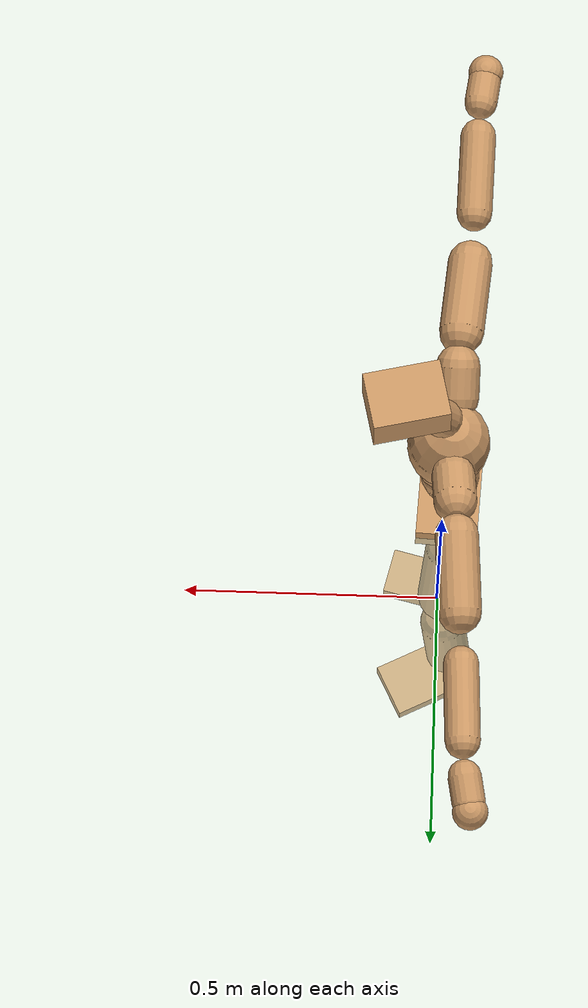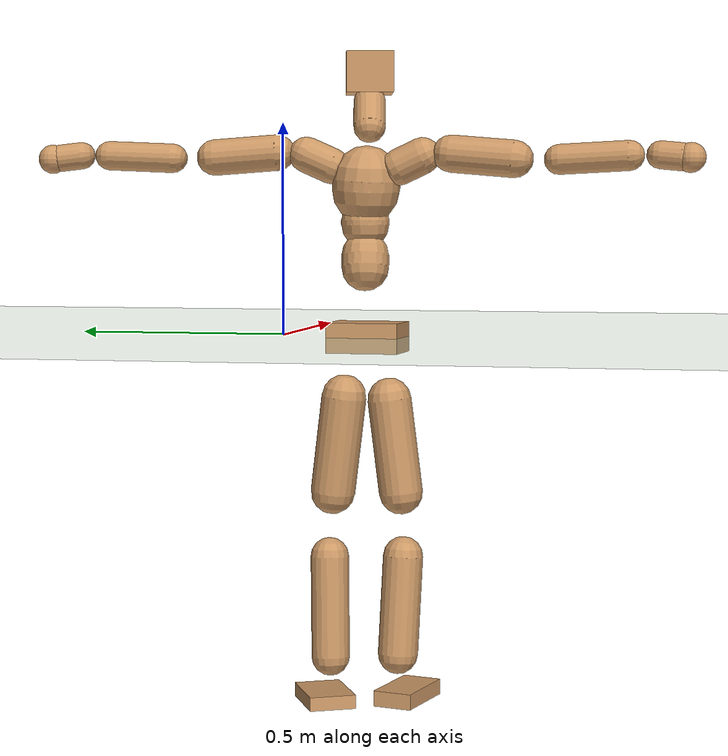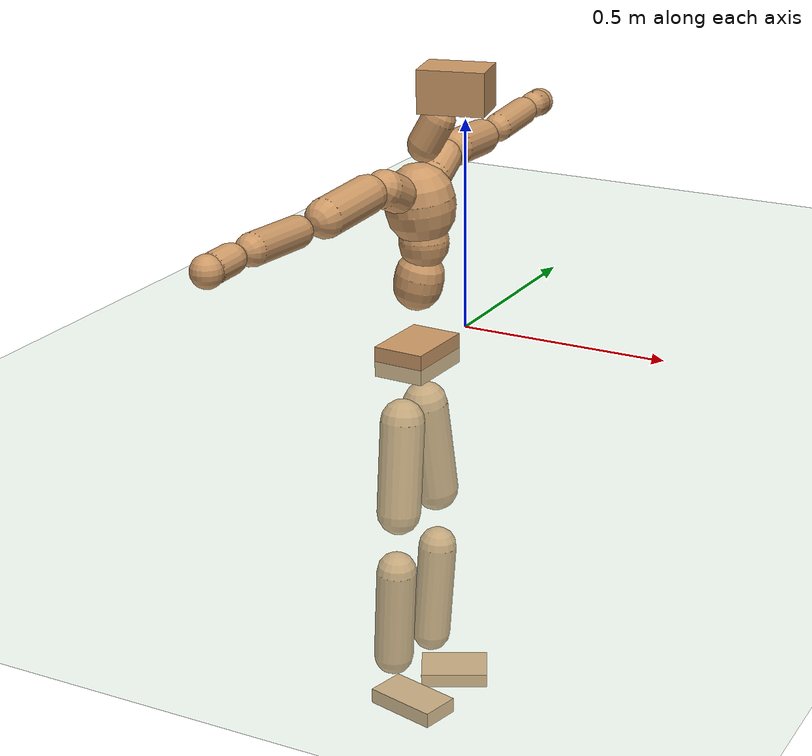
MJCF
<mujoco model="humanoid">
  <compiler coordinate="local" angle="radian"/>
  <default>
    <joint damping="0.0" armature="0.01" stiffness="0.0" limited="true"/>
    <geom conaffinity="1" condim="3" contype="7" margin="0.001" rgba="0.8 0.6 .4 1"/>
  </default>
  <asset>
    <texture type="skybox" builtin="gradient" rgb1=".4 .5 .6" rgb2="0 0 0" width="100" height="100"/>
    <texture builtin="flat" height="1278" mark="cross" markrgb="1 1 1" name="texgeom" random="0.01" rgb1="0.8 0.6 0.4" rgb2="0.8 0.6 0.4" type="cube" width="127"/>
    <texture builtin="checker" height="100" name="texplane" rgb1="0 0 0" rgb2="0.8 0.8 0.8" type="2d" width="100"/>
    <material name="MatPlane" reflectance="0.5" shininess="1" specular="1" texrepeat="60 60" texture="texplane"/>
    <material name="geom" texture="texgeom" texuniform="true"/>
  </asset>
  <worldbody>
    <light cutoff="100" diffuse="1 1 1" dir="-0 0 -1.3" directional="true" exponent="1" pos="0 0 1.3" specular=".1 .1 .1"/>
    <geom conaffinity="1" condim="3" name="floor" pos="0 0 0" rgba="0.8 0.9 0.8 1" size="100 100 .2" type="plane" material="MatPlane"/>
    <body name="Pelvis" pos="-0.006 -0.2084 0.0054">
      <freejoint name="Pelvis"/>
      <geom type="box" contype="1" conaffinity="1" density="500" pos="-0.0121 0.0006 -0.0082" size="0.0608 0.0857 0.0354" quat="0.9997 0.0000 0.0000 -0.0248" name="Pelvis"/>
      <body name="L_Hip" pos="-0.0261 0.0449 -0.0728">
        <joint name="L_Hip_x" type="hinge" pos="0 0 0" axis="1 0 0" stiffness="800" damping="80" armature="0.02" range="-180.0000 180.0000"/>
        <joint name="L_Hip_y" type="hinge" pos="0 0 0" axis="0 1 0" stiffness="800" damping="80" armature="0.02" range="-180.0000 180.0000"/>
        <joint name="L_Hip_z" type="hinge" pos="0 0 0" axis="0 0 1" stiffness="800" damping="80" armature="0.02" range="-180.0000 180.0000"/>
        <geom type="capsule" contype="1" conaffinity="1" density="500" fromto="0.0039 0.0099 -0.0762 0.0157 0.0395 -0.3047" size="0.0526" name="L_Hip"/>
        <body name="L_Knee" pos="0.0197 0.0494 -0.3808">
          <joint name="L_Knee_x" type="hinge" pos="0 0 0" axis="1 0 0" stiffness="800" damping="80" armature="0.02" range="-180.0000 180.0000"/>
          <joint name="L_Knee_y" type="hinge" pos="0 0 0" axis="0 1 0" stiffness="800" damping="80" armature="0.02" range="-180.0000 180.0000"/>
          <joint name="L_Knee_z" type="hinge" pos="0 0 0" axis="0 0 1" stiffness="800" damping="80" armature="0.02" range="-180.0000 180.0000"/>
          <geom type="capsule" contype="1" conaffinity="1" density="500" fromto="-0.0053 -0.0020 -0.0793 -0.0211 -0.0078 -0.3174" size="0.0457" name="L_Knee"/>
          <body name="L_Ankle" pos="-0.0264 -0.0098 -0.3967">
            <joint name="L_Ankle_x" type="hinge" pos="0 0 0" axis="1 0 0" stiffness="800" damping="80" armature="0.02" range="-180.0000 180.0000"/>
            <joint name="L_Ankle_y" type="hinge" pos="0 0 0" axis="0 1 0" stiffness="800" damping="80" armature="0.02" range="-180.0000 180.0000"/>
            <joint name="L_Ankle_z" type="hinge" pos="0 0 0" axis="0 0 1" stiffness="800" damping="80" armature="0.02" range="-180.0000 180.0000"/>
            <geom type="box" contype="1" conaffinity="1" density="500" pos="0.0553 0.0281 -0.0294" size="0.0811 0.0557 0.0165" quat="0.9726 0.0000 0.0000 0.2326" name="L_Ankle"/>
            <body name="L_Toe" pos="0.1106 0.0561 -0.0589">
              <joint name="L_Toe_x" type="hinge" pos="0 0 0" axis="1 0 0" stiffness="500" damping="50" armature="0.02" range="-180.0000 180.0000"/>
              <joint name="L_Toe_y" type="hinge" pos="0 0 0" axis="0 1 0" stiffness="500" damping="50" armature="0.02" range="-180.0000 180.0000"/>
              <joint name="L_Toe_z" type="hinge" pos="0 0 0" axis="0 0 1" stiffness="500" damping="50" armature="0.02" range="-180.0000 180.0000"/>
              <geom type="box" contype="1" conaffinity="1" density="500" pos="0.0000 0.0000 0.0321" size="0.0009 0.0026 0.001" quat="0.9718 0.0000 0.0000 0.2360" name="L_Toe"/>
            </body>
          </body>
        </body>
      </body>
      <body name="R_Hip" pos="-0.0233 -0.0453 -0.0802">
        <joint name="R_Hip_x" type="hinge" pos="0 0 0" axis="1 0 0" stiffness="800" damping="80" armature="0.02" range="-180.0000 180.0000"/>
        <joint name="R_Hip_y" type="hinge" pos="0 0 0" axis="0 1 0" stiffness="800" damping="80" armature="0.02" range="-180.0000 180.0000"/>
        <joint name="R_Hip_z" type="hinge" pos="0 0 0" axis="0 0 1" stiffness="800" damping="80" armature="0.02" range="-180.0000 180.0000"/>
        <geom type="capsule" contype="1" conaffinity="1" density="500" fromto="0.0007 -0.0092 -0.0733 0.0028 -0.0366 -0.2931" size="0.0513" name="R_Hip"/>
        <body name="R_Knee" pos="0.0035 -0.0458 -0.3664">
          <joint name="R_Knee_x" type="hinge" pos="0 0 0" axis="1 0 0" stiffness="800" damping="80" armature="0.02" range="-180.0000 180.0000"/>
          <joint name="R_Knee_y" type="hinge" pos="0 0 0" axis="0 1 0" stiffness="800" damping="80" armature="0.02" range="-180.0000 180.0000"/>
          <joint name="R_Knee_z" type="hinge" pos="0 0 0" axis="0 0 1" stiffness="800" damping="80" armature="0.02" range="-180.0000 180.0000"/>
          <geom type="capsule" contype="1" conaffinity="1" density="500" fromto="-0.0054 0.0029 -0.0770 -0.0214 0.0117 -0.3081" size="0.047" name="R_Knee"/>
          <body name="R_Ankle" pos="-0.0268 0.0146 -0.3852">
            <joint name="R_Ankle_x" type="hinge" pos="0 0 0" axis="1 0 0" stiffness="800" damping="80" armature="0.02" range="-180.0000 180.0000"/>
            <joint name="R_Ankle_y" type="hinge" pos="0 0 0" axis="0 1 0" stiffness="800" damping="80" armature="0.02" range="-180.0000 180.0000"/>
            <joint name="R_Ankle_z" type="hinge" pos="0 0 0" axis="0 0 1" stiffness="800" damping="80" armature="0.02" range="-180.0000 180.0000"/>
            <geom type="box" contype="1" conaffinity="1" density="500" pos="0.0615 -0.0148 -0.0283" size="0.0888 0.0472 0.0185" quat="0.9930 0.0000 0.0000 -0.1179" name="R_Ankle"/>
            <body name="R_Toe" pos="0.123 -0.0296 -0.0566">
              <joint name="R_Toe_x" type="hinge" pos="0 0 0" axis="1 0 0" stiffness="500" damping="50" armature="0.02" range="-180.0000 180.0000"/>
              <joint name="R_Toe_y" type="hinge" pos="0 0 0" axis="0 1 0" stiffness="500" damping="50" armature="0.02" range="-180.0000 180.0000"/>
              <joint name="R_Toe_z" type="hinge" pos="0 0 0" axis="0 0 1" stiffness="500" damping="50" armature="0.02" range="-180.0000 180.0000"/>
              <geom type="box" contype="1" conaffinity="1" density="500" pos="0.0000 0.0000 0.0323" size="0.0008 0.0023 0.0011" quat="0.9941 0.0000 0.0000 -0.1085" name="R_Toe"/>
            </body>
          </body>
        </body>
      </body>
      <body name="Torso" pos="-0.0229 0.004 0.1039">
        <joint name="Torso_x" type="hinge" pos="0 0 0" axis="1 0 0" stiffness="1000" damping="100" armature="0.02" range="-180.0000 180.0000"/>
        <joint name="Torso_y" type="hinge" pos="0 0 0" axis="0 1 0" stiffness="1000" damping="100" armature="0.02" range="-180.0000 180.0000"/>
        <joint name="Torso_z" type="hinge" pos="0 0 0" axis="0 0 1" stiffness="1000" damping="100" armature="0.02" range="-180.0000 180.0000"/>
        <geom type="capsule" contype="1" conaffinity="1" density="500" fromto="0.0160 0.0029 0.0786 0.0106 0.0019 0.0524" size="0.0562" name="Torso"/>
        <body name="Spine" pos="0.0266 0.0048 0.1311">
          <joint name="Spine_x" type="hinge" pos="0 0 0" axis="1 0 0" stiffness="1000" damping="100" armature="0.02" range="-180.0000 180.0000"/>
          <joint name="Spine_y" type="hinge" pos="0 0 0" axis="0 1 0" stiffness="1000" damping="100" armature="0.02" range="-180.0000 180.0000"/>
          <joint name="Spine_z" type="hinge" pos="0 0 0" axis="0 0 1" stiffness="1000" damping="100" armature="0.02" range="-180.0000 180.0000"/>
          <geom type="capsule" contype="1" conaffinity="1" density="500" fromto="-0.0010 -0.0001 0.0315 -0.0007 -0.0001 0.0210" size="0.057" name="Spine"/>
          <body name="Chest" pos="-0.0017 -0.0001 0.0525">
            <joint name="Chest_x" type="hinge" pos="0 0 0" axis="1 0 0" stiffness="1000" damping="100" armature="0.02" range="-180.0000 180.0000"/>
            <joint name="Chest_y" type="hinge" pos="0 0 0" axis="0 1 0" stiffness="1000" damping="100" armature="0.02" range="-180.0000 180.0000"/>
            <joint name="Chest_z" type="hinge" pos="0 0 0" axis="0 0 1" stiffness="1000" damping="100" armature="0.02" range="-180.0000 180.0000"/>
            <geom type="capsule" contype="1" conaffinity="1" density="500" fromto="-0.0070 -0.0041 0.0731 -0.0047 -0.0027 0.0488" size="0.0796" name="Chest"/>
            <body name="Neck" pos="-0.0022 -0.0108 0.1773">
              <joint name="Neck_x" type="hinge" pos="0 0 0" axis="1 0 0" stiffness="500" damping="50" armature="0.02" range="-180.0000 180.0000"/>
              <joint name="Neck_y" type="hinge" pos="0 0 0" axis="0 1 0" stiffness="500" damping="50" armature="0.02" range="-180.0000 180.0000"/>
              <joint name="Neck_z" type="hinge" pos="0 0 0" axis="0 0 1" stiffness="500" damping="50" armature="0.02" range="-180.0000 180.0000"/>
              <geom type="capsule" contype="1" conaffinity="1" density="500" fromto="0.0107 0.0022 0.0197 0.0429 0.0088 0.0787" size="0.0379" name="Neck"/>
              <body name="Head" pos="0.0536 0.0109 0.0984">
                <joint name="Head_x" type="hinge" pos="0 0 0" axis="1 0 0" stiffness="500" damping="50" armature="0.02" range="-180.0000 180.0000"/>
                <joint name="Head_y" type="hinge" pos="0 0 0" axis="0 1 0" stiffness="500" damping="50" armature="0.02" range="-180.0000 180.0000"/>
                <joint name="Head_z" type="hinge" pos="0 0 0" axis="0 0 1" stiffness="500" damping="50" armature="0.02" range="-180.0000 180.0000"/>
                <geom type="box" contype="1" conaffinity="1" density="500" pos="0.0278 0.0065 0.0502" size="0.0744 0.0554 0.0479" quat="0.9935 0.0000 0.0000 0.1140" name="Head"/>
              </body>
            </body>
            <body name="L_Thorax" pos="-0.0142 0.056 0.0956">
              <joint name="L_Thorax_x" type="hinge" pos="0 0 0" axis="1 0 0" stiffness="500" damping="50" armature="0.02" range="-180.0000 180.0000"/>
              <joint name="L_Thorax_y" type="hinge" pos="0 0 0" axis="0 1 0" stiffness="500" damping="50" armature="0.02" range="-180.0000 180.0000"/>
              <joint name="L_Thorax_z" type="hinge" pos="0 0 0" axis="0 0 1" stiffness="500" damping="50" armature="0.02" range="-180.0000 180.0000"/>
              <geom type="capsule" contype="1" conaffinity="1" density="500" fromto="-0.0016 0.0200 0.0089 -0.0064 0.0799 0.0357" size="0.0421" name="L_Thorax"/>
              <body name="L_Shoulder" pos="-0.008 0.0998 0.0446">
                <joint name="L_Shoulder_x" type="hinge" pos="0 0 0" axis="1 0 0" stiffness="500" damping="50" armature="0.02" range="-720.0000 720.0000"/>
                <joint name="L_Shoulder_y" type="hinge" pos="0 0 0" axis="0 1 0" stiffness="500" damping="50" armature="0.02" range="-720.0000 720.0000"/>
                <joint name="L_Shoulder_z" type="hinge" pos="0 0 0" axis="0 0 1" stiffness="500" damping="50" armature="0.02" range="-720.0000 720.0000"/>
                <geom type="capsule" contype="1" conaffinity="1" density="500" fromto="-0.0032 0.0499 -0.0036 -0.0128 0.1997 -0.0145" size="0.0422" name="L_Shoulder"/>
                <body name="L_Elbow" pos="-0.016 0.2497 -0.0181">
                  <joint name="L_Elbow_x" type="hinge" pos="0 0 0" axis="1 0 0" stiffness="500" damping="50" armature="0.02" range="-720.0000 720.0000"/>
                  <joint name="L_Elbow_y" type="hinge" pos="0 0 0" axis="0 1 0" stiffness="500" damping="50" armature="0.02" range="-720.0000 720.0000"/>
                  <joint name="L_Elbow_z" type="hinge" pos="0 0 0" axis="0 0 1" stiffness="500" damping="50" armature="0.02" range="-720.0000 720.0000"/>
                  <geom type="capsule" contype="1" conaffinity="1" density="500" fromto="-0.0022 0.0515 0.0023 -0.0090 0.2061 0.0091" size="0.0342" name="L_Elbow"/>
                  <body name="L_Wrist" pos="-0.0112 0.2576 0.0114">
                    <joint name="L_Wrist_x" type="hinge" pos="0 0 0" axis="1 0 0" stiffness="300" damping="30" armature="0.02" range="-180.0000 180.0000"/>
                    <joint name="L_Wrist_y" type="hinge" pos="0 0 0" axis="0 1 0" stiffness="300" damping="30" armature="0.02" range="-180.0000 180.0000"/>
                    <joint name="L_Wrist_z" type="hinge" pos="0 0 0" axis="0 0 1" stiffness="300" damping="30" armature="0.02" range="-180.0000 180.0000"/>
                    <geom type="capsule" contype="1" conaffinity="1" density="500" fromto="-0.0032 0.0169 -0.0021 -0.0127 0.0676 -0.0083" size="0.0321" name="L_Wrist"/>
                    <body name="L_Hand" pos="-0.0158 0.0845 -0.0104">
                      <joint name="L_Hand_x" type="hinge" pos="0 0 0" axis="1 0 0" stiffness="300" damping="30" armature="0.02" range="-180.0000 180.0000"/>
                      <joint name="L_Hand_y" type="hinge" pos="0 0 0" axis="0 1 0" stiffness="300" damping="30" armature="0.02" range="-180.0000 180.0000"/>
                      <joint name="L_Hand_z" type="hinge" pos="0 0 0" axis="0 0 1" stiffness="300" damping="30" armature="0.02" range="-180.0000 180.0000"/>
                      <geom type="sphere" contype="1" conaffinity="1" density="500" size="0.0343" pos="0.0000 0.0000 0.0000" name="L_Hand"/>
                    </body>
                  </body>
                </body>
              </body>
            </body>
            <body name="R_Thorax" pos="-0.0185 -0.0658 0.0929">
              <joint name="R_Thorax_x" type="hinge" pos="0 0 0" axis="1 0 0" stiffness="500" damping="50" armature="0.02" range="-180.0000 180.0000"/>
              <joint name="R_Thorax_y" type="hinge" pos="0 0 0" axis="0 1 0" stiffness="500" damping="50" armature="0.02" range="-180.0000 180.0000"/>
              <joint name="R_Thorax_z" type="hinge" pos="0 0 0" axis="0 0 1" stiffness="500" damping="50" armature="0.02" range="-180.0000 180.0000"/>
              <geom type="capsule" contype="1" conaffinity="1" density="500" fromto="-0.0001 -0.0184 0.0086 -0.0004 -0.0735 0.0345" size="0.0428" name="R_Thorax"/>
              <body name="R_Shoulder" pos="-0.0006 -0.0919 0.0432">
                <joint name="R_Shoulder_x" type="hinge" pos="0 0 0" axis="1 0 0" stiffness="500" damping="50" armature="0.02" range="-720.0000 720.0000"/>
                <joint name="R_Shoulder_y" type="hinge" pos="0 0 0" axis="0 1 0" stiffness="500" damping="50" armature="0.02" range="-720.0000 720.0000"/>
                <joint name="R_Shoulder_z" type="hinge" pos="0 0 0" axis="0 0 1" stiffness="500" damping="50" armature="0.02" range="-720.0000 720.0000"/>
                <geom type="capsule" contype="1" conaffinity="1" density="500" fromto="-0.0044 -0.0497 -0.0044 -0.0176 -0.1990 -0.0176" size="0.0434" name="R_Shoulder"/>
                <body name="R_Elbow" pos="-0.0219 -0.2487 -0.022">
                  <joint name="R_Elbow_x" type="hinge" pos="0 0 0" axis="1 0 0" stiffness="500" damping="50" armature="0.02" range="-720.0000 720.0000"/>
                  <joint name="R_Elbow_y" type="hinge" pos="0 0 0" axis="0 1 0" stiffness="500" damping="50" armature="0.02" range="-720.0000 720.0000"/>
                  <joint name="R_Elbow_z" type="hinge" pos="0 0 0" axis="0 0 1" stiffness="500" damping="50" armature="0.02" range="-720.0000 720.0000"/>
                  <geom type="capsule" contype="1" conaffinity="1" density="500" fromto="-0.0011 -0.0530 0.0026 -0.0045 -0.2121 0.0104" size="0.0345" name="R_Elbow"/>
                  <body name="R_Wrist" pos="-0.0056 -0.2651 0.0129">
                    <joint name="R_Wrist_x" type="hinge" pos="0 0 0" axis="1 0 0" stiffness="300" damping="30" armature="0.02" range="-180.0000 180.0000"/>
                    <joint name="R_Wrist_y" type="hinge" pos="0 0 0" axis="0 1 0" stiffness="300" damping="30" armature="0.02" range="-180.0000 180.0000"/>
                    <joint name="R_Wrist_z" type="hinge" pos="0 0 0" axis="0 0 1" stiffness="300" damping="30" armature="0.02" range="-180.0000 180.0000"/>
                    <geom type="capsule" contype="1" conaffinity="1" density="500" fromto="-0.0021 -0.0169 -0.0016 -0.0086 -0.0676 -0.0066" size="0.032" name="R_Wrist"/>
                    <body name="R_Hand" pos="-0.0107 -0.0846 -0.0082">
                      <joint name="R_Hand_x" type="hinge" pos="0 0 0" axis="1 0 0" stiffness="300" damping="30" armature="0.02" range="-180.0000 180.0000"/>
                      <joint name="R_Hand_y" type="hinge" pos="0 0 0" axis="0 1 0" stiffness="300" damping="30" armature="0.02" range="-180.0000 180.0000"/>
                      <joint name="R_Hand_z" type="hinge" pos="0 0 0" axis="0 0 1" stiffness="300" damping="30" armature="0.02" range="-180.0000 180.0000"/>
                      <geom type="sphere" contype="1" conaffinity="1" density="500" size="0.0341" pos="0.0000 0.0000 0.0000" name="R_Hand"/>
                    </body>
                  </body>
                </body>
              </body>
            </body>
          </body>
        </body>
      </body>
    </body>
  </worldbody>
  <actuator>
    <motor name="L_Hip_x" joint="L_Hip_x" gear="500"/>
    <motor name="L_Hip_y" joint="L_Hip_y" gear="500"/>
    <motor name="L_Hip_z" joint="L_Hip_z" gear="500"/>
    <motor name="L_Knee_x" joint="L_Knee_x" gear="500"/>
    <motor name="L_Knee_y" joint="L_Knee_y" gear="500"/>
    <motor name="L_Knee_z" joint="L_Knee_z" gear="500"/>
    <motor name="L_Ankle_x" joint="L_Ankle_x" gear="500"/>
    <motor name="L_Ankle_y" joint="L_Ankle_y" gear="500"/>
    <motor name="L_Ankle_z" joint="L_Ankle_z" gear="500"/>
    <motor name="L_Toe_x" joint="L_Toe_x" gear="500"/>
    <motor name="L_Toe_y" joint="L_Toe_y" gear="500"/>
    <motor name="L_Toe_z" joint="L_Toe_z" gear="500"/>
    <motor name="R_Hip_x" joint="R_Hip_x" gear="500"/>
    <motor name="R_Hip_y" joint="R_Hip_y" gear="500"/>
    <motor name="R_Hip_z" joint="R_Hip_z" gear="500"/>
    <motor name="R_Knee_x" joint="R_Knee_x" gear="500"/>
    <motor name="R_Knee_y" joint="R_Knee_y" gear="500"/>
    <motor name="R_Knee_z" joint="R_Knee_z" gear="500"/>
    <motor name="R_Ankle_x" joint="R_Ankle_x" gear="500"/>
    <motor name="R_Ankle_y" joint="R_Ankle_y" gear="500"/>
    <motor name="R_Ankle_z" joint="R_Ankle_z" gear="500"/>
    <motor name="R_Toe_x" joint="R_Toe_x" gear="500"/>
    <motor name="R_Toe_y" joint="R_Toe_y" gear="500"/>
    <motor name="R_Toe_z" joint="R_Toe_z" gear="500"/>
    <motor name="Torso_x" joint="Torso_x" gear="500"/>
    <motor name="Torso_y" joint="Torso_y" gear="500"/>
    <motor name="Torso_z" joint="Torso_z" gear="500"/>
    <motor name="Spine_x" joint="Spine_x" gear="500"/>
    <motor name="Spine_y" joint="Spine_y" gear="500"/>
    <motor name="Spine_z" joint="Spine_z" gear="500"/>
    <motor name="Chest_x" joint="Chest_x" gear="500"/>
    <motor name="Chest_y" joint="Chest_y" gear="500"/>
    <motor name="Chest_z" joint="Chest_z" gear="500"/>
    <motor name="Neck_x" joint="Neck_x" gear="500"/>
    <motor name="Neck_y" joint="Neck_y" gear="500"/>
    <motor name="Neck_z" joint="Neck_z" gear="500"/>
    <motor name="Head_x" joint="Head_x" gear="500"/>
    <motor name="Head_y" joint="Head_y" gear="500"/>
    <motor name="Head_z" joint="Head_z" gear="500"/>
    <motor name="L_Thorax_x" joint="L_Thorax_x" gear="500"/>
    <motor name="L_Thorax_y" joint="L_Thorax_y" gear="500"/>
    <motor name="L_Thorax_z" joint="L_Thorax_z" gear="500"/>
    <motor name="L_Shoulder_x" joint="L_Shoulder_x" gear="500"/>
    <motor name="L_Shoulder_y" joint="L_Shoulder_y" gear="500"/>
    <motor name="L_Shoulder_z" joint="L_Shoulder_z" gear="500"/>
    <motor name="L_Elbow_x" joint="L_Elbow_x" gear="500"/>
    <motor name="L_Elbow_y" joint="L_Elbow_y" gear="500"/>
    <motor name="L_Elbow_z" joint="L_Elbow_z" gear="500"/>
    <motor name="L_Wrist_x" joint="L_Wrist_x" gear="500"/>
    <motor name="L_Wrist_y" joint="L_Wrist_y" gear="500"/>
    <motor name="L_Wrist_z" joint="L_Wrist_z" gear="500"/>
    <motor name="L_Hand_x" joint="L_Hand_x" gear="500"/>
    <motor name="L_Hand_y" joint="L_Hand_y" gear="500"/>
    <motor name="L_Hand_z" joint="L_Hand_z" gear="500"/>
    <motor name="R_Thorax_x" joint="R_Thorax_x" gear="500"/>
    <motor name="R_Thorax_y" joint="R_Thorax_y" gear="500"/>
    <motor name="R_Thorax_z" joint="R_Thorax_z" gear="500"/>
    <motor name="R_Shoulder_x" joint="R_Shoulder_x" gear="500"/>
    <motor name="R_Shoulder_y" joint="R_Shoulder_y" gear="500"/>
    <motor name="R_Shoulder_z" joint="R_Shoulder_z" gear="500"/>
    <motor name="R_Elbow_x" joint="R_Elbow_x" gear="500"/>
    <motor name="R_Elbow_y" joint="R_Elbow_y" gear="500"/>
    <motor name="R_Elbow_z" joint="R_Elbow_z" gear="500"/>
    <motor name="R_Wrist_x" joint="R_Wrist_x" gear="500"/>
    <motor name="R_Wrist_y" joint="R_Wrist_y" gear="500"/>
    <motor name="R_Wrist_z" joint="R_Wrist_z" gear="500"/>
    <motor name="R_Hand_x" joint="R_Hand_x" gear="500"/>
    <motor name="R_Hand_y" joint="R_Hand_y" gear="500"/>
    <motor name="R_Hand_z" joint="R_Hand_z" gear="500"/>
  </actuator>
  <contact>
    <exclude body1="Torso" body2="Chest"/>
    <exclude body1="Head" body2="Chest"/>
    <exclude body1="R_Knee" body2="R_Toe"/>
    <exclude body1="R_Knee" body2="L_Ankle"/>
    <exclude body1="R_Knee" body2="L_Toe"/>
    <exclude body1="L_Knee" body2="L_Toe"/>
    <exclude body1="L_Knee" body2="R_Ankle"/>
    <exclude body1="L_Knee" body2="R_Toe"/>
    <exclude body1="L_Shoulder" body2="Chest"/>
    <exclude body1="R_Shoulder" body2="Chest"/>
  </contact>
  <sensor/>
  <size njmax="700" nconmax="700"/>
</mujoco>
